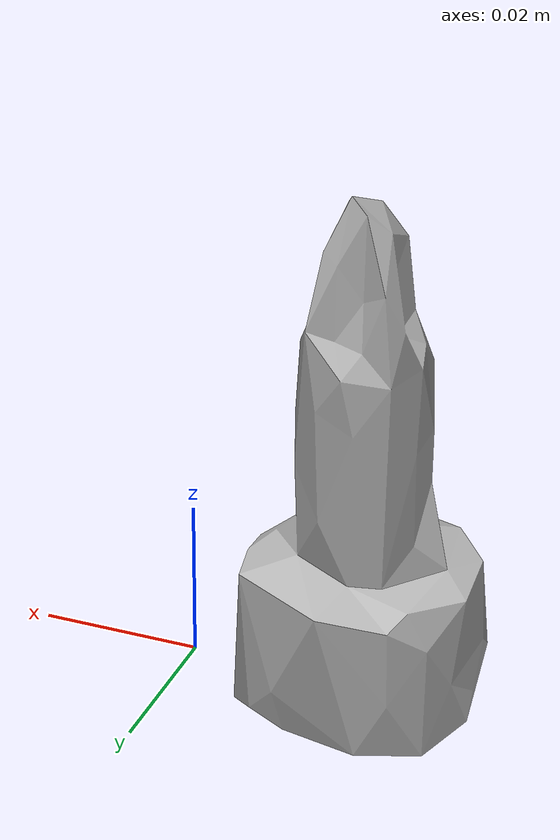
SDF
<?xml version='1.0'?>
<sdf version="1.4">
  <model name="072-d_toy_airplane">
    <static>false</static>
    <link name="link">
      <inertial>
        <pose>-0.022307954132718924 0.001531020778440125 0.021944467051661885 -2.6416761920563838e-05 -0.002568400092665062 3.0382767901239407</pose>
        <mass>0.002813960314662173</mass>
        <inertia>
          <ixx>7.689874631230222e-07</ixx>
          <ixy>5.557300585209826e-23</ixy>
          <ixz>-4.58713728904247e-23</ixz>
          <iyy>7.68594331256586e-07</iyy>
          <iyz>2.356131037262527e-22</iyz>
          <izz>2.572699412736713e-07</izz>
        </inertia>
      </inertial>
      <collision name="collision">
        <geometry>
          <mesh>
            <!-- Use a downsampled mesh for collisions -->
            <uri>model:///072-d_toy_airplane/072-d_toy_airplane_250_collision.stl</uri>
	        </mesh>
        </geometry>
        <surface>
      </surface>
      </collision>
      <visual name="visual">
        <geometry>
          <mesh>
            <uri>model:///072-d_toy_airplane/textured.obj</uri>
	        </mesh>
        </geometry>
        <material>
          <script>
            <uri>model:///072-d_toy_airplane/072-d_toy_airplane.material</uri>
            <name>072-d_toy_airplane</name>
          </script>
        </material>
      </visual>
    </link>
  </model>
</sdf>
